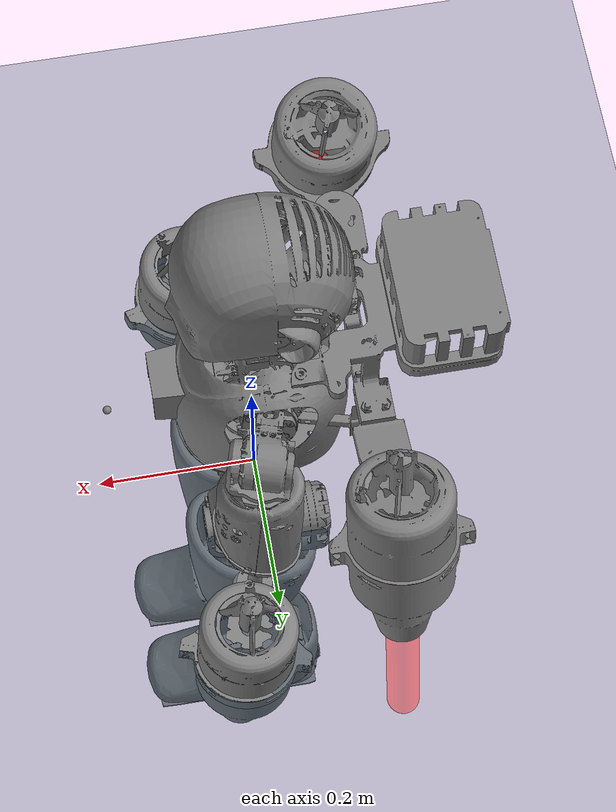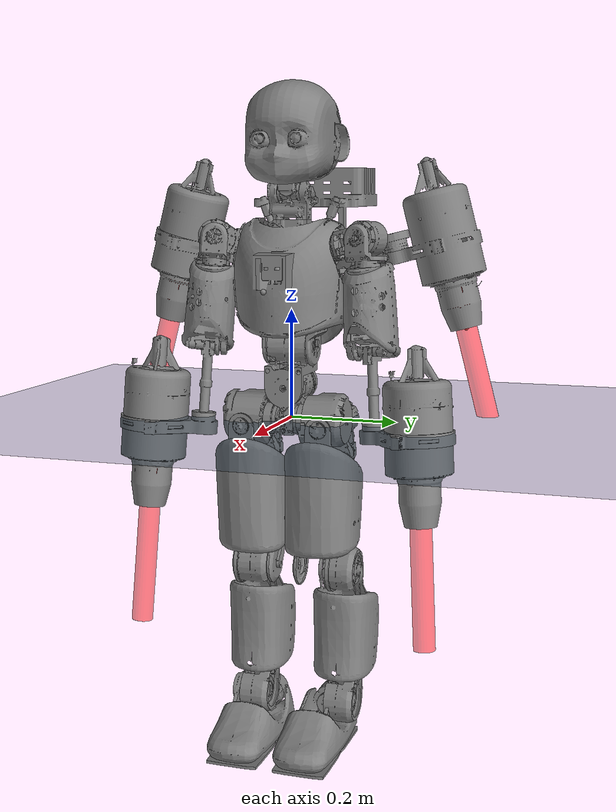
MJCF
<mujoco model="iCub">
    <visual>
        <headlight diffuse="0.6 0.6 0.6" ambient="0.3 0.3 0.3" specular="0 0 0" />
        <rgba haze="0.15 0.25 0.35 1" />
        <global offwidth="1920" offheight="1088" azimuth="120" elevation="-20" />
    </visual>

    <asset>
        <texture type="2d" name="groundplane" builtin="checker" mark="edge" rgb1="0.2 0.3 0.4" rgb2="0.1 0.2 0.3" markrgb="0.8 0.8 0.8" width="300" height="300"/>
        <material name="groundplane" texture="groundplane" texuniform="true" texrepeat="5 5" reflectance="0.2" />
    </asset>

    <worldbody>
        <geom name="ground" type="plane" pos="0 0 0" size="0 0 0.1" material="groundplane" />
        <light name="main_light" pos="0 0 2" dir="0 0 -1" diffuse="1 1 1" specular="0.5 0.5 0.5" directional="true" />
        <camera name="isometric" mode="targetbody" target="chest" pos="4 -2 3.0" zaxis="1 0 0"/>
    </worldbody>

    <option timestep="0.001"/>
    <option gravity="0 0 -9.81" iterations="50" cone="elliptic" />
    <compiler angle="radian" meshdir="../../meshes/obj/"/>
    <asset>
        <mesh name="sim_icub3_root_link" file="sim_icub3_root_link.obj" scale="0.001 0.001 0.001"/>
        <mesh name="sim_icub3_l_hip_1" file="sim_icub3_l_hip_1.obj" scale="0.001 0.001 0.001"/>
        <mesh name="sim_icub3_r_hip_1" file="sim_icub3_r_hip_1.obj" scale="0.001 0.001 0.001"/>
        <mesh name="sim_icub3_torso_1" file="sim_icub3_torso_1.obj" scale="0.001 0.001 0.001"/>
        <mesh name="sim_icub3_torso_2" file="sim_icub3_torso_2.obj" scale="0.001 0.001 0.001"/>
        <mesh name="sim_icub3_chest" file="sim_icub3_chest.obj" scale="0.001 0.001 0.001"/>
        <mesh name="sim_sea_3_jetpack" file="sim_sea_3_jetpack.obj" scale="0.001 0.001 0.001"/>
        <mesh name="sim_head_neck_1" file="sim_head_neck_1.obj" scale="0.001 0.001 0.001"/>
        <mesh name="sim_sea_l_jet_turbine" file="sim_sea_l_jet_turbine.obj" scale="0.001 0.001 0.001"/>
        <mesh name="sim_sea_r_jet_turbine" file="sim_sea_r_jet_turbine.obj" scale="0.001 0.001 0.001"/>
        <mesh name="sim_icub3_l_shoulder_1" file="sim_icub3_l_shoulder_1.obj" scale="0.001 0.001 0.001"/>
        <mesh name="sim_icub3_r_shoulder_1" file="sim_icub3_r_shoulder_1.obj" scale="0.001 0.001 0.001"/>
        <mesh name="sim_head_neck_2" file="sim_head_neck_2.obj" scale="0.001 0.001 0.001"/>
        <mesh name="sim_head_neck_3" file="sim_head_neck_3.obj" scale="0.001 0.001 0.001"/>
        <mesh name="sim_head_head" file="sim_head_head.obj" scale="0.001 0.001 0.001"/>
        <mesh name="sim_icub3_r_shoulder_2" file="sim_icub3_r_shoulder_2.obj" scale="0.001 0.001 0.001"/>
        <mesh name="sim_icub3_r_shoulder_3" file="sim_icub3_r_shoulder_3.obj" scale="0.001 0.001 0.001"/>
        <mesh name="sim_icub3_r_upperarm" file="sim_icub3_r_upperarm.obj" scale="0.001 0.001 0.001"/>
        <mesh name="sim_icub3_r_elbow_prosup" file="sim_icub3_r_elbow_prosup.obj" scale="0.001 0.001 0.001"/>
        <mesh name="sim_sea_r_arm_p250" file="sim_sea_r_arm_p250.obj" scale="0.001 0.001 0.001"/>
        <mesh name="sim_icub3_l_shoulder_2" file="sim_icub3_l_shoulder_2.obj" scale="0.001 0.001 0.001"/>
        <mesh name="sim_icub3_l_shoulder_3" file="sim_icub3_l_shoulder_3.obj" scale="0.001 0.001 0.001"/>
        <mesh name="sim_icub3_l_upperarm" file="sim_icub3_l_upperarm.obj" scale="0.001 0.001 0.001"/>
        <mesh name="sim_icub3_l_elbow_prosup" file="sim_icub3_l_elbow_prosup.obj" scale="0.001 0.001 0.001"/>
        <mesh name="sim_sea_l_arm_p250" file="sim_sea_l_arm_p250.obj" scale="0.001 0.001 0.001"/>
        <mesh name="sim_icub3_r_hip_2" file="sim_icub3_r_hip_2.obj" scale="0.001 0.001 0.001"/>
        <mesh name="sim_icub3_r_hip_3" file="sim_icub3_r_hip_3.obj" scale="0.001 0.001 0.001"/>
        <mesh name="sim_icub3_r_upper_leg" file="sim_icub3_r_upper_leg.obj" scale="0.001 0.001 0.001"/>
        <mesh name="sim_icub3_r_lower_leg" file="sim_icub3_r_lower_leg.obj" scale="0.001 0.001 0.001"/>
        <mesh name="sim_icub3_r_ankle_1" file="sim_icub3_r_ankle_1.obj" scale="0.001 0.001 0.001"/>
        <mesh name="sim_icub3_r_ankle_2" file="sim_icub3_r_ankle_2.obj" scale="0.001 0.001 0.001"/>
        <mesh name="sim_icub3_r_foot_front" file="sim_icub3_r_foot_front.obj" scale="0.001 0.001 0.001"/>
        <mesh name="sim_icub3_r_foot_rear" file="sim_icub3_r_foot_rear.obj" scale="0.001 0.001 0.001"/>
        <mesh name="sim_icub3_l_hip_2" file="sim_icub3_l_hip_2.obj" scale="0.001 0.001 0.001"/>
        <mesh name="sim_icub3_l_hip_3" file="sim_icub3_l_hip_3.obj" scale="0.001 0.001 0.001"/>
        <mesh name="sim_icub3_l_upper_leg" file="sim_icub3_l_upper_leg.obj" scale="0.001 0.001 0.001"/>
        <mesh name="sim_icub3_l_lower_leg" file="sim_icub3_l_lower_leg.obj" scale="0.001 0.001 0.001"/>
        <mesh name="sim_icub3_l_ankle_1" file="sim_icub3_l_ankle_1.obj" scale="0.001 0.001 0.001"/>
        <mesh name="sim_icub3_l_ankle_2" file="sim_icub3_l_ankle_2.obj" scale="0.001 0.001 0.001"/>
        <mesh name="sim_icub3_l_foot_front" file="sim_icub3_l_foot_front.obj" scale="0.001 0.001 0.001"/>
        <mesh name="sim_icub3_l_foot_rear" file="sim_icub3_l_foot_rear.obj" scale="0.001 0.001 0.001"/>
    </asset>
    <worldbody>
        <body name="root_link">
            <inertial pos="0.0035506 -0.000149592 0.024519" quat="0.999531 0.00379601 -0.0301892 0.00340234" mass="2.66299" diaginertia="0.00462616 0.00418985 0.00261671"/>
            <joint name="base_link_fixed_joint" type="free" limited="false" actuatorfrclimited="false" damping="2"/>
            <geom type="mesh" mesh="sim_icub3_root_link" contype="0" conaffinity="0"/>
            <body name="l_hip_1" pos="0.0216 0.04045 0" quat="1 0 0 0">
                <inertial pos="-0.00407407 0.0281233 -0.000724326" quat="0.548121 0.513742 0.460106 0.473217" mass="2.23484" diaginertia="0.00269237 0.00244311 0.00218265"/>
                <joint name="l_hip_pitch" pos="0 0 0" axis="0 -1 0" range="-0.785398 2.00713" actuatorfrcrange="-1000000000 1000000000" damping="2"/>
                <geom type="mesh" mesh="sim_icub3_l_hip_1" contype="1" conaffinity="6"/>
                <body name="l_hip_2" pos="-0.04725 0.0331 -0.009" quat="1 0 0 0">
                    <inertial pos="0.0199603 -0.00680607 -0.0876894" quat="0.688273 -0.208005 -0.147871 0.679079" mass="4.12061" diaginertia="0.0197755 0.0181139 0.00638926"/>
                    <joint name="l_hip_roll" pos="0 0 0" axis="1 0 0" range="-0.174533 1.95477" actuatorfrcrange="-1000000000 1000000000" damping="2"/>
                    <geom type="mesh" mesh="sim_icub3_l_hip_2" contype="1" conaffinity="6"/>
                    <geom pos="0.0367 0 -0.0897" type="mesh" mesh="sim_icub3_l_hip_3" contype="1" conaffinity="6"/>
                    <body name="l_upper_leg" pos="0.0367 -0.015 -0.1606" quat="1 0 0 0">
                        <inertial pos="0.00523811 0.00149931 -0.0518513" quat="0.995117 0.0572478 -0.0803044 -0.00400651" mass="0.940298" diaginertia="0.00244183 0.00193333 0.000997255"/>
                        <joint name="l_hip_yaw" pos="0 0 0" axis="0 0 1" range="-1.39626 1.39626" actuatorfrcrange="-1000000000 1000000000" damping="2"/>
                        <geom type="mesh" mesh="sim_icub3_l_upper_leg" contype="1" conaffinity="6"/>
                        <body name="l_lower_leg" pos="0.015 0.0249 -0.1062" quat="1 0 0 0">
                            <inertial pos="-0.0132211 -0.0220632 -0.126395" quat="0.692378 -0.000754771 0.00355445 0.721526" mass="5.22092" diaginertia="0.0571244 0.0546229 0.00595032"/>
                            <joint name="l_knee" pos="0 0 0" axis="0 -1 0" range="-1.22173 0.0872665" actuatorfrcrange="-1000000000 1000000000" damping="2"/>
                            <geom type="mesh" mesh="sim_icub3_l_lower_leg" contype="1" conaffinity="6"/>
                            <body name="l_ankle_1" pos="0 -0.0005 -0.255988">
                                <inertial pos="-0.00567091 -0.000477589 -0.0151979" quat="0.588728 0.350735 0.559781 0.465864" mass="0.378178" diaginertia="0.000739988 0.000551699 0.000300462"/>
                                <joint name="l_ankle_pitch" pos="0 0 0" axis="0 1 0" range="-0.785398 0.785398" actuatorfrcrange="-1000000000 1000000000" damping="2"/>
                                <geom type="mesh" mesh="sim_icub3_l_ankle_1" contype="1" conaffinity="6"/>
                                <body name="l_ankle_2" pos="-0.05275 -0.0182 -0.035" quat="1 0 0 0">
                                    <inertial pos="0.0487712 -4.43223e-05 -0.0331105" quat="0.448936 0.545752 0.547746 0.447868" mass="1.79372" diaginertia="0.0103439 0.0102087 0.00215293"/>
                                    <joint name="l_ankle_roll" pos="0 0 0" axis="1 0 0" range="-0.436332 0.436332" actuatorfrcrange="-1000000000 1000000000" damping="2"/>
                                    <geom type="mesh" mesh="sim_icub3_l_ankle_2" contype="1" conaffinity="6"/>
                                    <geom pos="0.13525 0 -0.0658" type="mesh" mesh="sim_icub3_l_foot_front" contype="1" conaffinity="6"/>
                                    <geom pos="0.016 0 -0.0658" type="mesh" mesh="sim_icub3_l_foot_rear" contype="1" conaffinity="6"/>
                                    <site name="l_foot_front_ft_fixed_joint" pos="0.13525 2.7755575615628914e-17 -0.043500000000000094" quat="0.49999999999999994 -1.6064465647710993e-16 4.401502965657393e-17 -0.8660254037844387"/>
                                    <site name="l_foot_rear_ft_fixed_joint" pos="0.016000000000000007 1.3877787807814457e-17 -0.043500000000000094" quat="0.49999999999999994 1.2235542307980193e-16 -1.130885792944841e-16 -0.8660254037844387"/>
                                    <site name="l_sole" pos="0.07563 1.3877787807814392e-17 -0.06580000000000019" quat="0.5 -3.9443045261050625e-31 -4.163336342344669e-17 -8.480254731125877e-30"/>
                                    <site name="l_sole_3" pos="-0.019000000000000003 -0.02474999999999996 -0.06580000000000019" quat="0.5 -3.9443045261050625e-31 -4.163336342344669e-17 -8.480254731125877e-30"/>
                                    <site name="l_sole_4" pos="-0.018999999999999996 0.03025000000000004 -0.06580000000000019" quat="0.5 -3.9443045261050625e-31 -4.163336342344669e-17 -8.480254731125877e-30"/>
                                    <site name="l_sole_1" pos="0.16025000000000006 0.02525000000000001 -0.06580000000000041" quat="0.5 -3.9443045261050625e-31 -4.16333634234463e-17 -1.0255191767873153e-29"/>
                                    <site name="l_sole_2" pos="0.16025000000000006 -0.024749999999999987 -0.0658000000000003" quat="0.5 -3.9443045261050625e-31 -4.16333634234463e-17 -1.0255191767873153e-29"/>
                                </body>
                            </body>
                        </body>
                    </body>
                </body>
            </body>
            <body name="r_hip_1" pos="0.0216 -0.04055 0" quat="1 0 0 0">
                <inertial pos="-0.00410649 -0.0281098 -0.000835856" quat="0.477905 0.453454 0.502998 0.559446" mass="2.23609" diaginertia="0.00277635 0.00244842 0.00226399"/>
                <joint name="r_hip_pitch" pos="0 0 0" axis="0 -1 0" range="-0.785398 2.00713" actuatorfrcrange="-1000000000 1000000000" damping="2"/>
                <geom type="mesh" mesh="sim_icub3_r_hip_1" contype="4" conaffinity="3"/>
                <body name="r_hip_2" pos="-0.0473 -0.0331 -0.009" quat="1 0 0 0">
                    <inertial pos="0.0199557 0.00681416 -0.0877119" quat="0.679219 -0.147117 -0.207622 0.688412" mass="4.12061" diaginertia="0.0198289 0.0181585 0.00640178"/>
                    <joint name="r_hip_roll" pos="0 0 0" axis="-1 0 0" range="-0.174533 1.95477" actuatorfrcrange="-1000000000 1000000000" damping="2"/>
                    <geom type="mesh" mesh="sim_icub3_r_hip_2" contype="4" conaffinity="3"/>
                    <geom pos="0.0367 0 -0.0897" quat="1 0 0 0" type="mesh" mesh="sim_icub3_r_hip_3" contype="4" conaffinity="3"/>
                    <body name="r_upper_leg" pos="0.0367 0.015 -0.1606" quat="1 0 0 0">
                        <inertial pos="0.00524034 -0.00149981 -0.0518573" quat="0.995132 -0.0570249 -0.0802746 0.00399182" mass="0.940298" diaginertia="0.00244493 0.00193628 0.000997161"/>
                        <joint name="r_hip_yaw" pos="0 0 0" axis="0 0 -1" range="-1.39626 1.39626" actuatorfrcrange="-1000000000 1000000000" damping="2"/>
                        <geom type="mesh" mesh="sim_icub3_r_upper_leg" contype="4" conaffinity="3"/>
                        <body name="r_lower_leg" pos="0.015 -0.0249 -0.1062" quat="1 0 0 0">
                            <inertial pos="-0.0131024 0.0219867 -0.127261" quat="0.722146 0.00274951 -0.000778203 0.691735" mass="5.24944" diaginertia="0.0577544 0.0552301 0.00598147"/>
                            <joint name="r_knee" pos="0 0 0" axis="0 -1 0" range="-1.22173 0.0872665" actuatorfrcrange="-1000000000 1000000000" damping="2"/>
                            <geom type="mesh" mesh="sim_icub3_r_lower_leg" contype="4" conaffinity="3"/>
                            <body name="r_ankle_1" pos="0 0.0005 -0.255988" quat="1 0 0 0">
                                <inertial pos="-0.00566575 0.000476357 -0.0151867" quat="0.470241 0.556814 0.353879 0.586175" mass="0.378178" diaginertia="0.000748542 0.000552263 0.000309816"/>
                                <joint name="r_ankle_pitch" pos="0 0 0" axis="0 1 0" range="-0.785398 0.785398" actuatorfrcrange="-1000000000 1000000000" damping="2"/>
                                <geom type="mesh" mesh="sim_icub3_r_ankle_1" contype="4" conaffinity="3"/>
                                <body name="r_ankle_2" pos="-0.05275 0.0182 -0.035" quat="1 0 0 0">
                                    <inertial pos="0.0487865 0.000102088 -0.032957" quat="0.473712 0.514454 0.579171 0.418922" mass="1.7947" diaginertia="0.0104816 0.0102293 0.00228389"/>
                                    <joint name="r_ankle_roll" pos="0 0 0" axis="-1 0 0" range="-0.436332 0.436332" actuatorfrcrange="-1000000000 1000000000" damping="2"/>
                                    <geom type="mesh" mesh="sim_icub3_r_ankle_2" contype="4" conaffinity="3"/>
                                    <geom pos="0.13525 0 -0.0658" quat="1 0 0 0" type="mesh" mesh="sim_icub3_r_foot_front" contype="4" conaffinity="3"/>
                                    <geom pos="0.016 0 -0.0658" quat="1 0 0 0" type="mesh" mesh="sim_icub3_r_foot_rear" contype="4" conaffinity="3"/>
                                    <site name="r_foot_front_ft_fixed_joint" pos="0.13524999999999834 -1.3877787807814457e-17 -0.04349999999999987" quat="0.4999999999999995 -1.4676686866929402e-16 6.805206323636893e-17 -0.8660254037844389"/>
                                    <site name="r_foot_rear_ft_fixed_joint" pos="0.015999999999998335 1.3877787807814457e-17 -0.04349999999999998" quat="0.4999999999999995 1.3623321088761854e-16 -8.905154571468973e-17 -0.8660254037844389"/>
                                    <site name="r_sole" pos="0.07562999999999748 1.3877787807814444e-17 -0.06580000000000008" quat="0.5 1.4274555215572758e-30 1.918247132736051e-14 2.839554571460882e-17"/>
                                    <site name="r_sole_3" pos="-0.019000000000002515 0.024850000000000018 -0.06579999999999997" quat="0.5 1.4274555215572758e-30 1.918247132736051e-14 2.839554571460882e-17"/>
                                    <site name="r_sole_4" pos="-0.019000000000002522 -0.030149999999999955 -0.06580000000000008" quat="0.5 1.4274555215572758e-30 1.918247132736051e-14 2.839554571460882e-17"/>
                                    <site name="r_sole_1" pos="0.1602499999999975 -0.025149999999999978 -0.06579999999999986" quat="0.5 -1.5026628888477042e-31 1.9182471327360514e-14 2.8395545714610005e-17"/>
                                    <site name="r_sole_2" pos="0.16024999999999745 0.024850000000000018 -0.06579999999999986" quat="0.5 -1.5026628888477042e-31 1.9182471327360514e-14 2.8395545714610005e-17"/>
                                </body>
                            </body>
                        </body>
                    </body>
                </body>
            </body>
            <body name="torso_1" pos="0 -5e-05 0.0605" quat="1 0 0 0">
                <inertial pos="-0.0080042 0.000351303 0.0519448" quat="0.6895 0.151843 0.149472 0.692237" mass="1.75684" diaginertia="0.003518 0.0028564 0.00197719"/>
                <joint name="torso_roll" pos="0 0 0" axis="-1 0 0" range="-0.401426 0.401426" actuatorfrcrange="-1000000000 1000000000" damping="2"/>
                <geom type="mesh" mesh="sim_icub3_torso_1" contype="2" conaffinity="5"/>
                <body name="torso_2" pos="0 5e-05 0.0725">
                    <inertial pos="0.00131935 0.00332192 0.0268081" quat="0.765504 0.643072 0.0166813 -0.0135724" mass="0.797301" diaginertia="0.0015106 0.00126464 0.000825127"/>
                    <joint name="torso_pitch" pos="0 0 0" axis="0 1 0" range="-0.314159 0.785398" actuatorfrcrange="-1000000000 1000000000" damping="2"/>
                    <geom type="mesh" mesh="sim_icub3_torso_2" contype="2" conaffinity="5"/>
                    <body name="chest" pos="0 0 0.06447">
                        <camera name="track" pos="2.5 -2.5 1" xyaxes="1 1 0 0 1 3" mode="trackcom"/>
                        <inertial pos="-0.0857772 -0.00015247 0.111781" quat="0.640877 0.641373 -0.298149 0.298371" mass="17.2175" diaginertia="0.525138 0.406763 0.198866"/>
                        <joint name="torso_yaw" pos="0 0 0" axis="0 0 -1" range="-0.750492 0.750492" actuatorfrcrange="-1000000000 1000000000" damping="2"/>
                        <geom type="mesh" mesh="sim_icub3_chest" contype="2" conaffinity="5"/>
                        <geom pos="-0.14499 -0.00013 0.145418" quat="0.707107 0 0 -0.707107" type="mesh" mesh="sim_sea_3_jetpack" contype="2" conaffinity="5"/>
                        <geom pos="-0.00378849 0 0.1653" type="mesh" mesh="sim_head_neck_1" contype="2" conaffinity="5"/>
                        <geom pos="-0.129711 0.299701 -0.0345367" quat="0.130526 -0.991445 0 0" type="mesh" mesh="sim_sea_l_jet_turbine" contype="1" conaffinity="6"/>
                        <geom pos="-0.129711 -0.300184 -0.0344073" quat="0.130526 0.991445 0 0" type="mesh" mesh="sim_sea_r_jet_turbine" contype="4" conaffinity="3"/>
                        <body name="l_shoulder_1" pos="-0.0208351 0.0397423 0.105203" quat="0.983506 0.125212 -0.0164845 -0.129481">
                            <inertial pos="0.000167632 0.0872256 0.000450898" quat="0.710384 0.702377 -0.0300533 0.033438" mass="0.813288" diaginertia="0.00109227 0.00106878 0.000321833"/>
                            <joint name="l_shoulder_pitch" pos="0 0 0" axis="0 1 0" range="-3.05433 0.349066" actuatorfrcrange="-1000000000 1000000000" damping="2"/>
                            <geom type="mesh" mesh="sim_icub3_l_shoulder_1" contype="1" conaffinity="6"/>
                            <body name="l_shoulder_2" pos="0.00499278 0.1115 0.000268609" quat="0.995835 -0.0871243 -0.0267684 -0.00234193">
                                <inertial pos="0.0030428 0.000127861 -0.0363895" quat="0.690505 0.172471 0.173591 0.680678" mass="0.710897" diaginertia="0.000824034 0.000759429 0.00032135"/>
                                <joint name="l_shoulder_roll" pos="0 0 0" axis="1 2.00439e-11 -1.13672e-10" range="0.20944 2.84489" actuatorfrcrange="-1000000000 1000000000" damping="2"/>
                                <geom type="mesh" mesh="sim_icub3_l_shoulder_2" contype="1" conaffinity="6"/>
                                <geom pos="-0.00435 0 -0.0543" quat="1 0 0 0" type="mesh" mesh="sim_icub3_l_shoulder_3" contype="1" conaffinity="6"/>
                                <body name="l_upper_arm" pos="-0.00435 0 -0.0768" quat="1 0 5.68214e-11 1.00257e-11">
                                    <inertial pos="0.00105483 0.00246625 -0.0505969" quat="0.648058 0.00187351 -0.037451 0.760667" mass="1.6756" diaginertia="0.00309566 0.00298995 0.00128264"/>
                                    <joint name="l_shoulder_yaw" pos="0 0 0" axis="1.13643e-10 0 -1" range="-0.872665 1.39626" actuatorfrcrange="-1000000000 1000000000" damping="2"/>
                                    <geom type="mesh" mesh="sim_icub3_l_upperarm" contype="1" conaffinity="6"/>
                                    <body name="l_elbow_1" pos="0.01 -0.0015 -0.1237" quat="1 0 5.02885e-11 0">
                                        <inertial pos="-0.0145554 0.0719794 -0.140616" quat="0.980951 0.194022 0.00795946 0.00531616" mass="2.952" diaginertia="0.0165795 0.0140648 0.0066052"/>
                                        <joint name="l_elbow" pos="0 0 0" axis="0 -1 0" range="-0.0523599 1.309" actuatorfrcrange="-1000000000 1000000000" damping="2"/>
                                        <geom type="mesh" mesh="sim_icub3_l_elbow_prosup" contype="1" conaffinity="6"/>
                                        <geom pos="-0.015 0.0917105 -0.312002" quat="0 0.707107 -0.707107 0" type="mesh" mesh="sim_sea_l_arm_p250" contype="1" conaffinity="6"/>
                                        <site name="l_arm_turbine" pos="-0.015 0.0917105 -0.312002" quat="0 0.707107 -0.707107 0"/>
                                        <body name="l_arm_body" pos="-0.015 0.0917105 -0.312002" quat="0 0.707107 -0.707107 0">
                                            <inertial pos="0 0 0" quat="1 0 0 0" mass="0.0" diaginertia="0.0 0.0 0.0"/>
                                            <geom name="l_arm_cylinder" type="cylinder" pos="0 0 0.075" quat="1 0 0 0" size="0.02 0.15" rgba="1 0 0 0.5"/>
                                        </body>
                                    </body>
                                </body>
                                <site name="l_arm_ft_fixed_joint" pos="-0.004349999999999996 -2.7755575615628914e-17 -0.0543" quat="-3.5206820122414e-17 0.707106781186548 -0.707106781186547 -1.2180242574596345e-16"/>
                            </body>
                        </body>
                        <body name="r_shoulder_1" pos="-0.0208351 -0.0397423 0.105203" quat="0.983506 -0.125212 -0.0164845 0.129481">
                            <inertial pos="0.000167511 -0.0872173 0.000450736" quat="0.702382 0.710369 -0.0335549 0.0301624" mass="0.81384" diaginertia="0.00109246 0.00106892 0.000321909"/>
                            <joint name="r_shoulder_pitch" pos="0 0 0" axis="0 1 0" range="-3.05433 0.349066" actuatorfrcrange="-1000000000 1000000000" damping="2"/>
                            <geom type="mesh" mesh="sim_icub3_r_shoulder_1" contype="4" conaffinity="3"/>
                            <body name="r_shoulder_2" pos="0.00748917 -0.1115 0.000402914" quat="0.995835 0.0871243 -0.0267684 0.00234193">
                                <inertial pos="0.000510389 -0.000143523 -0.0363895" quat="0.681297 0.172836 0.17121 0.690398" mass="0.710897" diaginertia="0.000822396 0.000758152 0.000320989"/>
                                <joint name="r_shoulder_roll" pos="0 0 0" axis="-1 0 0" range="0.20944 2.84489" actuatorfrcrange="-1000000000 1000000000" damping="2"/>
                                <geom type="mesh" mesh="sim_icub3_r_shoulder_2" contype="4" conaffinity="3"/>
                                <geom pos="-0.00685 0 -0.0543" quat="1 0 0 0" type="mesh" mesh="sim_icub3_r_shoulder_3" contype="4" conaffinity="3"/>
                                <body name="r_upper_arm" pos="-0.00685 0 -0.0768" quat="1 0 0 0">
                                    <inertial pos="0.00104774 -0.00255925 -0.050653" quat="0.752021 -0.0387285 0.00429224 0.657986" mass="1.67729" diaginertia="0.00310054 0.0029883 0.0012749"/>
                                    <joint name="r_shoulder_yaw" pos="0 0 0" axis="0 0 1" range="-0.872665 1.39626" actuatorfrcrange="-1000000000 1000000000" damping="2"/>
                                    <geom type="mesh" mesh="sim_icub3_r_upperarm" contype="4" conaffinity="3"/>
                                    <body name="r_elbow_1" pos="0.01 0.0015 -0.1237" quat="1 0 0 0">
                                        <inertial pos="-0.0144974 -0.0725677 -0.140711" quat="0.980949 -0.194068 0.00819392 -0.00318253" mass="2.945" diaginertia="0.0165952 0.0140409 0.00664925"/>
                                        <joint name="r_elbow" pos="0 0 0" axis="0 -1 0" range="-0.0523599 1.309" actuatorfrcrange="-1000000000 1000000000" damping="2"/>
                                        <geom type="mesh" mesh="sim_icub3_r_elbow_prosup" contype="4" conaffinity="3"/>
                                        <geom pos="-0.0149251 -0.0922796 -0.312002" quat="0 -0.793353 0.608761 0" type="mesh" mesh="sim_sea_r_arm_p250" contype="4" conaffinity="3"/>
                                        <site name="r_arm_turbine" pos="-0.0149251 -0.0922796 -0.312002" quat="0 -0.793353 0.608761 0"/>
                                        <body name="r_arm_body" pos="-0.0149251 -0.0922796 -0.312002" quat="0 -0.793353 0.608761 0">
                                            <inertial pos="0 0 0" quat="1 0 0 0" mass="0.0" diaginertia="0.0 0.0 0.0"/>
                                            <geom name="r_arm_cylinder" type="cylinder" pos="0 0 0.075" quat="1 0 0 0" size="0.02 0.15" rgba="1 0 0 0.5"/>
                                        </body>
                                    </body>
                                </body>
                                <site name="r_arm_ft_fixed_joint" pos="-0.006850000000000002 0 -0.05429999999999999" quat="1.1198934787918985e-16 0.707106781186547 0.707106781186548 -2.5393742255640415e-17"/>
                            </body>
                        </body>
                        <body name="neck_2" pos="0.00486151 1.68784e-06 0.2143" quat="1 0 0 0">
                            <inertial pos="-0.0063756 3.63093e-05 0.00659762" quat="0.960013 0.0068643 -0.279872 -0.000133887" mass="0.125549" diaginertia="5.34039e-05 4.05698e-05 3.26762e-05"/>
                            <joint name="neck_pitch" pos="0 0 0" axis="0 -1 0" range="-0.523599 0.383972" actuatorfrcrange="-1000000000 1000000000" damping="2"/>
                            <geom type="mesh" mesh="sim_head_neck_2" contype="2" conaffinity="5"/>
                            <body name="neck_3" pos="0 0 0.0095" quat="1 0 0 0">
                                <inertial pos="0.0012654 -8.21882e-05 0.0361093" quat="0.714222 -0.0528973 -0.0492244 0.696179" mass="0.190133" diaginertia="0.000123783 0.000112196 3.9776e-05"/>
                                <joint name="neck_roll" pos="0 0 0" axis="1 0 0" range="-0.349066 0.349066" actuatorfrcrange="-1000000000 1000000000" damping="2"/>
                                <geom type="mesh" mesh="sim_head_neck_3" contype="2" conaffinity="5"/>
                                <body name="head" pos="0 0 0.06915" quat="1 0 0 0">
                                    <inertial pos="-0.00107173 -0.00258185 0.021357" quat="0.438872 0.567808 0.360035 0.596121" mass="1.49298" diaginertia="0.00757608 0.00731897 0.0044854"/>
                                    <joint name="neck_yaw" pos="0 0 0" axis="0 0 1" range="-0.785398 0.785398" actuatorfrcrange="-1000000000 1000000000" damping="2"/>
                                    <geom type="mesh" mesh="sim_head_head" contype="2" conaffinity="5"/>
                                    <site name="head_imu" pos="0.0035 0.0055 0.101334" quat="9.381839455653148e-07 0.707105482510614 -0.7071080798588513 -9.381873918002969e-07"/>
                                </body>
                            </body>
                        </body>
                        <site name="l_jet_turbine" pos="-0.129711 0.299701 -0.0345367" quat="0.130526 -0.991445 0 0"/>
                        <body name="l_jet_body" pos="-0.129711 0.299701 -0.0345367" quat="0.130526 -0.991445 0 0">
                            <inertial pos="0 0 0" quat="1 0 0 0" mass="0.0" diaginertia="0.0 0.0 0.0"/>
                            <geom name="l_jet_cylinder" type="cylinder" pos="0 0 0.075" quat="1 0 0 0" size="0.02 0.15" rgba="1 0 0 0.5"/>
                        </body>
                        <site name="r_jet_turbine" pos="-0.129711 -0.300184 -0.0344073" quat="0.130526 0.991445 0 0"/>
                        <body name="r_jet_body" pos="-0.129711 -0.300184 -0.0344073" quat="0.130526 0.991445 0 0">
                            <inertial pos="0 0 0" quat="1 0 0 0" mass="0.0" diaginertia="0.0 0.0 0.0"/>
                            <geom name="r_jet_cylinder" type="cylinder" pos="0 0 0.075" quat="1 0 0 0" size="0.02 0.15" rgba="1 0 0 0.5"/>
                        </body>
                        <site name="realsense_imu_fixed_joint" pos="0.17474 0.00874979 0.0477659" quat="0.6532814824381884 0.27059805007309856 -0.27059805007309856 -0.6532814824381883"/>
                        <site name="chest_imu" pos="0.100122 0.00772565 0.081506" quat="0.00034258628702523385 -0.7071066969287677 0.0003477809828808075 -0.7071066969287676"/>
                        <site name="chest_sensor" pos="0 0 0"/>
                    </body>
                </body>
            </body>
            <site name="root_link_site" pos="0 0 0"/>
        </body>
    </worldbody>
    <actuator>
        <position joint="l_hip_pitch" name="l_hip_pitch_motor" ctrlrange="-0.785398 2.00713" kp="1200" dampratio="0.2"/>
        <position joint="l_hip_roll" name="l_hip_roll_motor" ctrlrange="-0.174533 1.95477" kp="1200" dampratio="0.2"/>
        <position joint="l_hip_yaw" name="l_hip_yaw_motor" ctrlrange="-1.39626 1.39626" kp="1200" dampratio="0.5"/>
        <position joint="l_knee" name="l_knee_motor" ctrlrange="-1.22173 0.0872665" kp="1800" dampratio="0.8"/>
        <position joint="l_ankle_pitch" name="l_ankle_pitch_motor" ctrlrange="-0.785398 0.785398" kp="1800" dampratio="0.8"/>
        <position joint="l_ankle_roll" name="l_ankle_roll_motor" ctrlrange="-0.436332 0.436332" kp="1800" dampratio="0.8"/>
        <position joint="r_hip_pitch" name="r_hip_pitch_motor" ctrlrange="-0.785398 2.00713" kp="1200" dampratio="0.2"/>
        <position joint="r_hip_roll" name="r_hip_roll_motor" ctrlrange="-0.174533 1.95477" kp="1200" dampratio="0.2"/>
        <position joint="r_hip_yaw" name="r_hip_yaw_motor" ctrlrange="-1.39626 1.39626" kp="1200" dampratio="0.5"/>
        <position joint="r_knee" name="r_knee_motor" ctrlrange="-1.22173 0.0872665" kp="1800" dampratio="0.8"/>
        <position joint="r_ankle_pitch" name="r_ankle_pitch_motor" ctrlrange="-0.785398 0.785398" kp="1800" dampratio="0.8"/>
        <position joint="r_ankle_roll" name="r_ankle_roll_motor" ctrlrange="-0.436332 0.436332" kp="1800" dampratio="0.8"/>
        <position joint="torso_roll" name="torso_roll_motor" ctrlrange="-0.401426 0.401426" kp="1500" dampratio="0.2"/>
        <position joint="torso_pitch" name="torso_pitch_motor" ctrlrange="-0.314159 0.785398" kp="1500" dampratio="0.3"/>
        <position joint="torso_yaw" name="torso_yaw_motor" ctrlrange="-0.750492 0.750492" kp="1500" dampratio="0.4"/>
        <position joint="l_shoulder_pitch" name="l_shoulder_pitch_motor" ctrlrange="-3.05433 0.349066" kp="3000" dampratio="0.3"/>
        <position joint="l_shoulder_roll" name="l_shoulder_roll_motor" ctrlrange="0.20944 2.84489" kp="3000" dampratio="0.3"/>
        <position joint="l_shoulder_yaw" name="l_shoulder_yaw_motor" ctrlrange="-0.872665 1.39626" kp="3000" dampratio="0.3"/>
        <position joint="l_elbow" name="l_elbow_motor" ctrlrange="-0.0523599 1.309" kp="3000" dampratio="0.3"/>
        <position joint="r_shoulder_pitch" name="r_shoulder_pitch_motor" ctrlrange="-3.05433 0.349066" kp="3000" dampratio="0.3"/>
        <position joint="r_shoulder_roll" name="r_shoulder_roll_motor" ctrlrange="0.20944 2.84489" kp="3000" dampratio="0.3"/>
        <position joint="r_shoulder_yaw" name="r_shoulder_yaw_motor" ctrlrange="-0.872665 1.39626" kp="3000" dampratio="0.3"/>
        <position joint="r_elbow" name="r_elbow_motor" ctrlrange="-0.0523599 1.309" kp="3000" dampratio="0.3"/>
        <position joint="neck_pitch" name="neck_pitch_motor" ctrlrange="-0.523599 0.383972" kp="2000" dampratio="0.12"/>
        <position joint="neck_roll" name="neck_roll_motor" ctrlrange="-0.349066 0.349066" kp="2000" dampratio="0.12"/>
        <position joint="neck_yaw" name="neck_yaw_motor" ctrlrange="-0.785398 0.785398" kp="2000" dampratio="0.12"/>
        <motor gear="0 0 -1 0 0 0" site="l_arm_turbine" name="l_arm_jet_turbine" ctrlrange="0 250"/>
        <motor gear="0 0 -1 0 0 0" site="r_arm_turbine" name="r_arm_jet_turbine" ctrlrange="0 250"/>
        <motor gear="0 0 -1 0 0 0" site="l_jet_turbine" name="chest_l_jet_turbine" ctrlrange="0 250"/>
        <motor gear="0 0 -1 0 0 0" site="r_jet_turbine" name="chest_r_jet_turbine" ctrlrange="0 250"/>
    </actuator>
    <sensor>
        <force name="l_foot_front_ft_fixed_joint_force_sensor" site="l_foot_front_ft_fixed_joint"/>
        <torque name="l_foot_front_ft_fixed_joint_torque_sensor" site="l_foot_front_ft_fixed_joint"/>
        <force name="l_foot_rear_ft_fixed_joint_force_sensor" site="l_foot_rear_ft_fixed_joint"/>
        <torque name="l_foot_rear_ft_fixed_joint_torque_sensor" site="l_foot_rear_ft_fixed_joint"/>
        <force name="r_foot_front_ft_fixed_joint_force_sensor" site="r_foot_front_ft_fixed_joint"/>
        <torque name="r_foot_front_ft_fixed_joint_torque_sensor" site="r_foot_front_ft_fixed_joint"/>
        <force name="r_foot_rear_ft_fixed_joint_force_sensor" site="r_foot_rear_ft_fixed_joint"/>
        <torque name="r_foot_rear_ft_fixed_joint_torque_sensor" site="r_foot_rear_ft_fixed_joint"/>
        <force name="l_arm_ft_fixed_joint_force_sensor" site="l_arm_ft_fixed_joint"/>
        <torque name="l_arm_ft_fixed_joint_torque_sensor" site="l_arm_ft_fixed_joint"/>
        <force name="r_arm_ft_fixed_joint_force_sensor" site="r_arm_ft_fixed_joint"/>
        <torque name="r_arm_ft_fixed_joint_torque_sensor" site="r_arm_ft_fixed_joint"/>
        <accelerometer name="head_imu_acc_sensor" site="head_imu"/>
        <gyro name="head_imu_gyro_sensor" site="head_imu"/>
        <accelerometer name="realsense_imu_fixed_joint_acc_sensor" site="realsense_imu_fixed_joint"/>
        <gyro name="realsense_imu_fixed_joint_gyro_sensor" site="realsense_imu_fixed_joint"/>
        <accelerometer name="chest_imu_acc_sensor" site="chest_imu"/>
        <gyro name="chest_imu_gyro_sensor" site="chest_imu"/>
        <gyro name="chest_gyro_sensor" site="chest_sensor" noise="0.048"/>
        <velocimeter name="chest_velocimeter_sensor" site="chest_sensor" noise="0.5"/>
    </sensor>
</mujoco>
